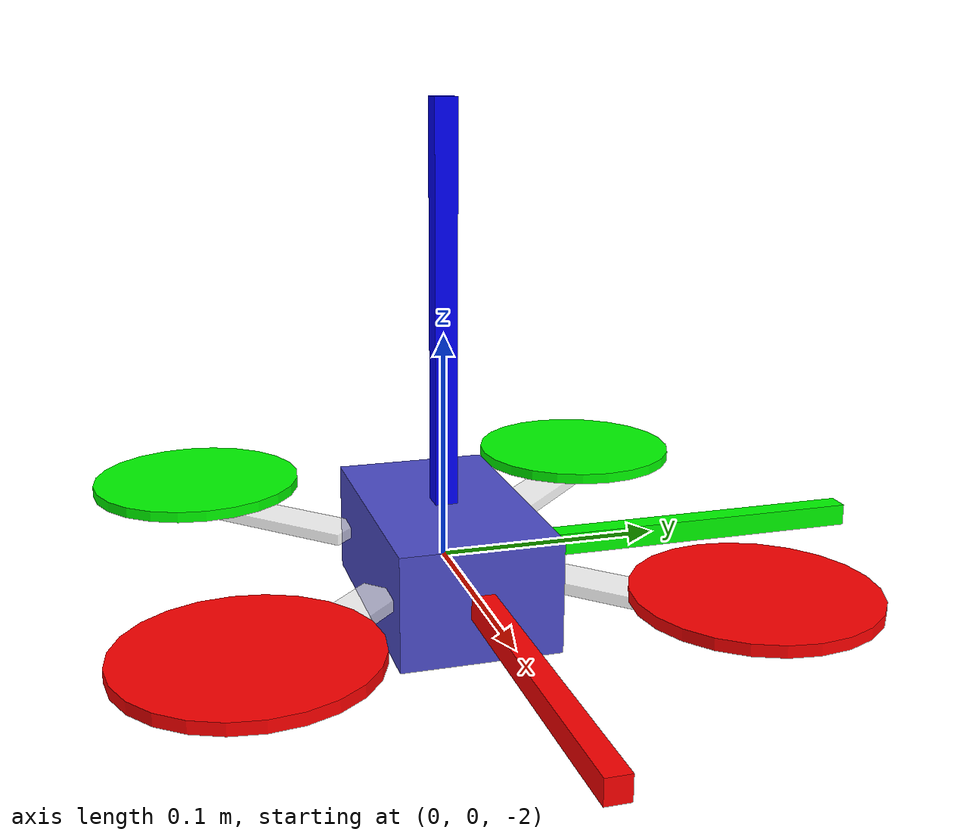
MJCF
<!-- written by Inkyu Sa, enddl22@gmail.com -->

<mujoco model="quadrotor0">
	<compiler inertiafromgeom="true" coordinate="local"/>
	<option	timestep="0.001" gravity="0 0 -9.81" density="1" viscosity="1e-5" />
	<worldbody>
		<geom name="floor" pos="0 0 -4" size="2 2 .2" type="plane"  conaffinity="1" rgba="1 1 1 1" condim="3"/>
		<body name="quadrotor" pos="0 0 -2">
			<geom name="core" type="box" pos="0 0 0" quat = "1. 0. 0. 0" size="0.06 0.035 0.025"  rgba="0.3 0.3 0.8 1" mass = ".2"/>

			<geom name="a00" type="box" pos=".071 0.071 0.0" size="0.05 0.01 0.0025"  quat = ".924 0.0 0.0 0.383" rgba="1 1 1 0.7" mass = ".025"/>
			<geom name="a10" type="box" pos=".071 -0.071 0.0" size="0.05 0.01 0.0025"  quat = ".383 0.0 0.0 0.924" rgba="1 1 1 0.7" mass = ".025"/>
			<geom name="a20" type="box" pos="-0.071 -0.071 0.0" size="0.05 0.01 0.0025"  quat = "-.383 0.0 0.0 0.924" rgba="1 1 1 0.7" mass = ".025"/>
			<geom name="a30" type="box" pos="-.071 0.071 0.0" size="0.05 0.01 0.0025"  quat = ".924 0.0 0.0 -0.383" rgba="1 1 1 0.7" mass = ".025"/>

			<joint name="root"   type="free" damping="0" armature="0" pos="0 0 0" />

			<!-- Actuator sites to attach actuators, make it invisible -->
			<!-- Four individual motors, one for each propeller-->
			<site name="motor0" pos=" 0.1  0.1 0" />
			<site name="motor1" pos=" 0.1 -0.1 0" />
			<site name="motor2" pos="-0.1 -0.1 0" />
			<site name="motor3" pos="-0.1  0.1 0" />
			<site name="imu_site" pos="0 0 0" />
			<!-- Actuator sites for pitch/roll/yaw which are no longer needed-->

			<!-- Thruster geometries for collisions since site's are excluded from collision checking -->
            <geom name="thruster0" type="cylinder" pos=" 0.1  0.1  0.01" size="0.05 0.0025"  quat = "1.0 0.0 0.0 0." rgba="1 0.0 0.0 1" mass = ".025"/>
            <geom name="thruster1" type="cylinder" pos=" 0.1 -0.1  0.01" size="0.05 0.0025"  quat = "1.0 0.0 0.0 0." rgba="1 0.0 0.0 1" mass = ".025"/>
            <geom name="thruster2" type="cylinder" pos="-0.1 -0.1  0.01" size="0.05 0.0025"  quat = "1.0 0.0 0.0 0." rgba="0 1 0 1" mass = ".025"/>
            <geom name="thruster3" type="cylinder" pos="-0.1  0.1  0.01" size="0.05 0.0025"  quat = "1.0 0.0 0.0 0." rgba="0 1 0 1" mass = ".025"/>

            <!-- Visualization of the coordinate frame -->
			<site name="qcX" type="box" pos="0.1 0.0 0.0" size="0.1 0.005 0.005"  quat = " 1.000  0.0  0.0    0."     rgba="1 0 0 1" />
			<site name="qcY" type="box" pos="0.0 0.1 0.0" size="0.1 0.005 0.005"  quat = " 0.707  0.0  0.0    0.707"  rgba="0 1 0 1" />
			<site name="qcZ" type="box" pos="0.0 0.0 0.1" size="0.1 0.005 0.005"  quat = "-0.707  0.0  0.707  0."     rgba="0 0 1 1" />
		</body>
	</worldbody>
	<sensor>
        <accelerometer name="accel" site="imu_site"/>
        <gyro name="gyro" site="imu_site"/>
    </sensor>
    <actuator>
		<!-- four actuators, one for each motor-->
		<motor site="motor0" ctrlrange="0.0 7.0" gear="0 0 1 0 0 0.01"/>
		<motor site="motor1" ctrlrange="0.0 7.0" gear="0 0 1 0 0 -0.01"/>
		<motor site="motor2" ctrlrange="0.0 7.0" gear="0 0 1 0 0 0.01"/>
		<motor site="motor3" ctrlrange="0.0 7.0" gear="0 0 1 0 0 -0.01"/>

		<!-- No need for pitch/roll/yaw actuators anymore since quadrotors change these based off thrust differences-->
	</actuator>
</mujoco>
